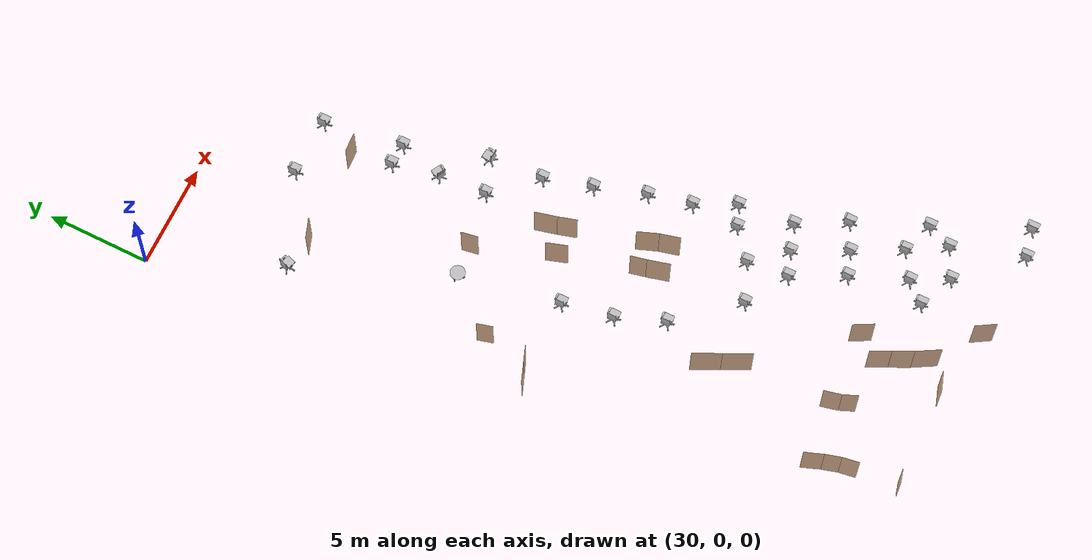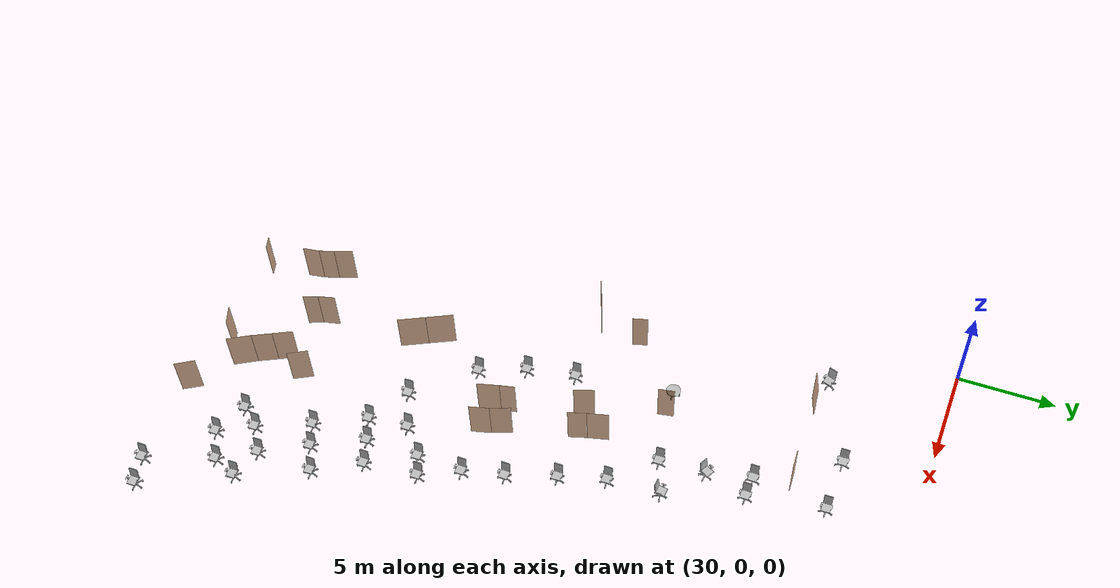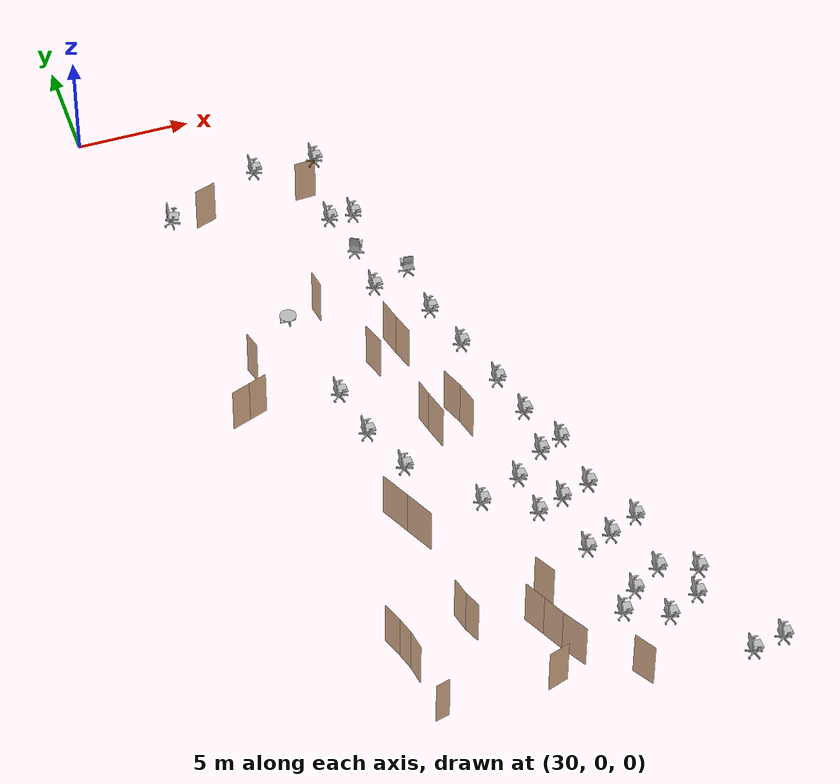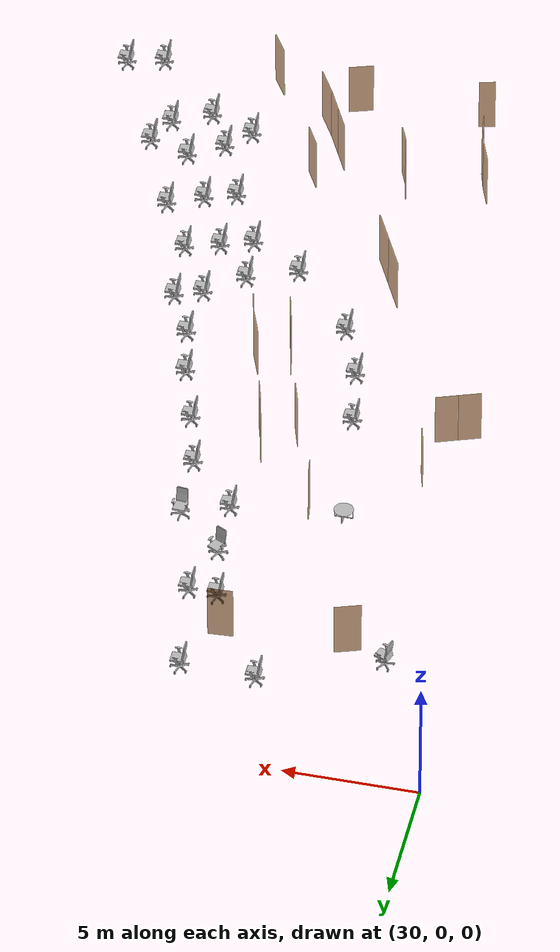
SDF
<sdf version="1.7">
 <world name="world">
  <include><uri>model://sun</uri></include>
  <include>
   <name>OpenRobotics/OfficeChairBlue_87</name>
   <uri>model://OfficeChairBlue</uri>
   <pose>49.55675901674036 -36.13892090346946 0.0 0 0 1.5708</pose>
   <static>True</static>
  </include>
  <include>
   <name>OpenRobotics/OfficeChairBlue_88</name>
   <uri>model://OfficeChairBlue</uri>
   <pose>48.15904496097328 -36.451538939352496 0.0 0 0 1.5708</pose>
   <static>True</static>
  </include>
  <include>
   <name>OpenRobotics/OfficeChairBlue_89</name>
   <uri>model://OfficeChairBlue</uri>
   <pose>43.909627604993254 -33.019836540409514 0.0 0 0 1.5708</pose>
   <static>True</static>
  </include>
  <include>
   <name>OpenRobotics/OfficeChairBlue_90</name>
   <uri>model://OfficeChairBlue</uri>
   <pose>44.74557532894025 -32.07744887990713 0.0 0 0 1.5708</pose>
   <static>True</static>
  </include>
  <include>
   <name>OpenRobotics/OfficeChairBlue_91</name>
   <uri>model://OfficeChairBlue</uri>
   <pose>46.02226323462398 -31.287132350983416 0.0 0 0 1.5833</pose>
   <static>True</static>
  </include>
  <include>
   <name>OpenRobotics/OfficeChairBlue_92</name>
   <uri>model://OfficeChairBlue</uri>
   <pose>47.587817301459395 -31.834312469275535 0.0 0 0 1.5708</pose>
   <static>True</static>
  </include>
  <include>
   <name>OpenRobotics/OfficeChairBlue_93</name>
   <uri>model://OfficeChairBlue</uri>
   <pose>47.0558147296761 -33.050191633427154 0.0 0 0 1.5708</pose>
   <static>True</static>
  </include>
  <include>
   <name>OpenRobotics/OfficeChairBlue_94</name>
   <uri>model://OfficeChairBlue</uri>
   <pose>45.627154247910525 -33.76462042980676 0.0 0 0 1.5708</pose>
   <static>True</static>
  </include>
  <include>
   <name>OpenRobotics/OfficeChairBlue_95</name>
   <uri>model://OfficeChairBlue</uri>
   <pose>43.66639263886485 -29.432810678493116 0.0 0 0 1.5708</pose>
   <static>True</static>
  </include>
  <include>
   <name>OpenRobotics/OfficeChairBlue_96</name>
   <uri>model://OfficeChairBlue</uri>
   <pose>44.83673916349 -29.02242558977403 0.0 0 0 1.5708</pose>
   <static>True</static>
  </include>
  <include>
   <name>OpenRobotics/OfficeChairBlue_97</name>
   <uri>model://OfficeChairBlue</uri>
   <pose>46.12870317117936 -28.414436729949816 0.0 0 0 1.5708</pose>
   <static>True</static>
  </include>
  <include>
   <name>OpenRobotics/OfficeChairBlue_98</name>
   <uri>model://OfficeChairBlue</uri>
   <pose>42.43523737270758 -26.9705001461786 0.0 0 0 1.5708</pose>
   <static>True</static>
  </include>
  <include>
   <name>OpenRobotics/OfficeChairBlue_99</name>
   <uri>model://OfficeChairBlue</uri>
   <pose>43.620761443841566 -26.54483895545388 0.0 0 0 1.5708</pose>
   <static>True</static>
  </include>
  <include>
   <name>OpenRobotics/OfficeChairBlue_100</name>
   <uri>model://OfficeChairBlue</uri>
   <pose>44.8975479050221 -26.134453866734795 0.0 0 0 1.5708</pose>
   <static>True</static>
  </include>
  <include>
   <name>OpenRobotics/OfficeChairBlue_101</name>
   <uri>model://OfficeChairBlue</uri>
   <pose>43.637023100815306 -23.82234191155954 0.0 0 0 1.5708</pose>
   <static>True</static>
  </include>
  <include>
   <name>OpenRobotics/OfficeChairBlue_102</name>
   <uri>model://OfficeChairBlue</uri>
   <pose>44.648103942594624 -23.423586371464097 0.0 0 0 1.5708</pose>
   <static>True</static>
  </include>
  <include>
   <name>OpenRobotics/OfficeChairBlue_103</name>
   <uri>model://OfficeChairBlue</uri>
   <pose>42.25566925751878 -24.961544899192564 0.0 0 0 1.5708</pose>
   <static>True</static>
  </include>
  <include>
   <name>OpenRobotics/OfficeChairBlue_104</name>
   <uri>model://OfficeChairBlue</uri>
   <pose>40.40440280542961 -25.716282893767676 0.0 0 0 1.5708</pose>
   <static>True</static>
  </include>
  <include>
   <name>OpenRobotics/OfficeChairBlue_137</name>
   <uri>model://OfficeChairBlue</uri>
   <pose>37.04651847359772 -4.176190621849798 0.0 0 0 1.5708</pose>
   <static>True</static>
  </include>
  <include>
   <name>OpenRobotics/OfficeChairBlue_138</name>
   <uri>model://OfficeChairBlue</uri>
   <pose>39.82568492815812 -4.256710462744009 0.0 0 0 1.5708</pose>
   <static>True</static>
  </include>
  <include>
   <name>OpenRobotics/OfficeChairBlue_139</name>
   <uri>model://OfficeChairBlue</uri>
   <pose>41.819462628635335 -14.668605923293448 0.0 0 0 1.5708</pose>
   <static>True</static>
  </include>
  <include>
   <name>OpenRobotics/OfficeChairBlue_140</name>
   <uri>model://OfficeChairBlue</uri>
   <pose>43.71251661137217 -21.495840853849945 0.0 0 0 1.5708</pose>
   <static>True</static>
  </include>
  <include>
   <name>OpenRobotics/OfficeChairBlue_141</name>
   <uri>model://OfficeChairBlue</uri>
   <pose>43.24940433185945 -19.42144475698171 0.0 0 0 1.5708</pose>
   <static>True</static>
  </include>
  <include>
   <name>OpenRobotics/OfficeChairBlue_142</name>
   <uri>model://OfficeChairBlue</uri>
   <pose>42.46391702227945 -16.984660098341124 0.0 0 0 1.5708</pose>
   <static>True</static>
  </include>
  <include>
   <name>OpenRobotics/OfficeChairBlue_143</name>
   <uri>model://OfficeChairBlue</uri>
   <pose>36.643722158133045 -18.172845167888987 0.0 0 0 1.5708</pose>
   <static>True</static>
  </include>
  <include>
   <name>OpenRobotics/OfficeChairBlue_144</name>
   <uri>model://OfficeChairBlue</uri>
   <pose>37.08672911629642 -20.629833703375734 0.0 0 0 1.5708</pose>
   <static>True</static>
  </include>
  <include>
   <name>OpenRobotics/OfficeChairBlue_145</name>
   <uri>model://OfficeChairBlue</uri>
   <pose>37.972940143616796 -22.92568400157725 0.0 0 0 1.5708</pose>
   <static>True</static>
  </include>
  <include>
   <name>OpenRobotics/OfficeChairBlue_146</name>
   <uri>model://OfficeChairBlue</uri>
   <pose>39.362474093148585 -8.042818428217691 0.0 0 0 1.5708</pose>
   <static>True</static>
  </include>
  <include>
   <name>OpenRobotics/OfficeChairBlue_147</name>
   <uri>model://OfficeChairBlue</uri>
   <pose>40.42983012360673 -8.103232947762551 0.0 0 0 1.5708</pose>
   <static>True</static>
  </include>
  <include>
   <name>OpenRobotics/OfficeChairBlue_148</name>
   <uri>model://OfficeChairBlue</uri>
   <pose>39.78537572996261 -10.177629044630786 0.0 0 0 2.6584</pose>
   <static>True</static>
  </include>
  <include>
   <name>OpenRobotics/OfficeChairBlue_149</name>
   <uri>model://OfficeChairBlue</uri>
   <pose>39.966717844094 -12.634617580117535 0.0 0 0 1.5708</pose>
   <static>True</static>
  </include>
  <include>
   <name>OpenRobotics/OfficeChairBlue_150</name>
   <uri>model://OfficeChairBlue</uri>
   <pose>41.537495352260386 -11.909544790082395 0.0 0 0 3.0485</pose>
   <static>True</static>
  </include>
  <include>
   <name>OpenRobotics/OfficeChairBlue_169</name>
   <uri>model://OfficeChairBlue</uri>
   <pose>32.72407149448108 -6.061360164841797 0.0 0 0 1.2406</pose>
   <static>True</static>
  </include>
  <include>
   <name>OpenRobotics/CoffeeTable_3</name>
   <uri>model://CoffeeTable</uri>
   <pose>35.741052362845316 -13.25325043359729 0.0 0 0 1.5708</pose>
   <static>True</static>
  </include>
  <model name="door_24">
   <pose>35.243839881436145 -35.68837444980008 0.0 0 0 0.26191786335358175</pose>
   <link name="right">
    <pose>0 0 1.11 0 0 0</pose>
    <visual name="right_visual">
     <geometry><box><size>0.6222113270615409 0.03 2.2</size></box></geometry>
     <material><ambient>0.5 0.25 0 0.6</ambient><diffuse>0.5 0.25 0 0.6</diffuse></material>
    </visual>
    <collision name="right_collision">
     <geometry><box><size>0.6222113270615409 0.03 2.2</size></box></geometry>
     <surface><contact><collide_bitmask>0x02</collide_bitmask></contact></surface>
    </collision>
    <inertial>
     <mass>50.0</mass>
     <inertia><ixx>20.17041666666667</ixx><iyy>21.779778898015355</iyy><izz>1.616862231348683</izz></inertia>
    </inertial>
   </link>
   <joint name="right_joint" type="revolute">
    <parent>world</parent>
    <child>right</child>
    <axis><xyz>0 0 -1</xyz><limit><lower>0</lower><upper>1.57</upper></limit></axis>
    <pose>0.31610566353077046 0 0 0 0 0</pose>
   </joint>
   <plugin name="door" filename="libdoor.so">
    <v_max_door>0.5</v_max_door>
    <a_max_door>0.3</a_max_door>
    <a_nom_door>0.15</a_nom_door>
    <dx_min_door>0.01</dx_min_door>
    <f_max_door>500.0</f_max_door>
    <door name="door_24" type="SwingDoor" left_joint_name="empty_joint" right_joint_name="right_joint"/>
   </plugin>
  </model>
  <model name="door_25">
   <pose>34.9086033590351 -33.35108156518973 0.0 0 0 -1.4198516233371654</pose>
   <link name="right">
    <pose>0 0 1.11 0 0 0</pose>
    <visual name="right_visual">
     <geometry><box><size>0.8295808804307718 0.03 2.2</size></box></geometry>
     <material><ambient>0.5 0.25 0 0.6</ambient><diffuse>0.5 0.25 0 0.6</diffuse></material>
    </visual>
    <collision name="right_collision">
     <geometry><box><size>0.8295808804307718 0.03 2.2</size></box></geometry>
     <surface><contact><collide_bitmask>0x02</collide_bitmask></contact></surface>
    </collision>
    <inertial>
     <mass>50.0</mass>
     <inertia><ixx>20.17041666666667</ixx><iyy>23.034185154901234</iyy><izz>2.871268488234561</izz></inertia>
    </inertial>
   </link>
   <joint name="right_joint" type="revolute">
    <parent>world</parent>
    <child>right</child>
    <axis><xyz>0 0 -1</xyz><limit><lower>0</lower><upper>1.57</upper></limit></axis>
    <pose>0.4197904402153859 0 0 0 0 0</pose>
   </joint>
   <plugin name="door" filename="libdoor.so">
    <v_max_door>0.5</v_max_door>
    <a_max_door>0.3</a_max_door>
    <a_nom_door>0.15</a_nom_door>
    <dx_min_door>0.01</dx_min_door>
    <f_max_door>500.0</f_max_door>
    <door name="door_25" type="SwingDoor" left_joint_name="empty_joint" right_joint_name="right_joint"/>
   </plugin>
  </model>
  <model name="door_26">
   <pose>34.73721535008157 -32.55716776063244 0.0 0 0 -1.2924794906765722</pose>
   <link name="right">
    <pose>0 0 1.11 0 0 0</pose>
    <visual name="right_visual">
     <geometry><box><size>0.7781207077813316 0.03 2.2</size></box></geometry>
     <material><ambient>0.5 0.25 0 0.6</ambient><diffuse>0.5 0.25 0 0.6</diffuse></material>
    </visual>
    <collision name="right_collision">
     <geometry><box><size>0.7781207077813316 0.03 2.2</size></box></geometry>
     <surface><contact><collide_bitmask>0x02</collide_bitmask></contact></surface>
    </collision>
    <inertial>
     <mass>50.0</mass>
     <inertia><ixx>20.17041666666667</ixx><iyy>22.689465982825507</iyy><izz>2.5265493161588353</izz></inertia>
    </inertial>
   </link>
   <joint name="right_joint" type="revolute">
    <parent>world</parent>
    <child>right</child>
    <axis><xyz>0 0 -1</xyz><limit><lower>0</lower><upper>1.57</upper></limit></axis>
    <pose>0.3940603538906658 0 0 0 0 0</pose>
   </joint>
   <plugin name="door" filename="libdoor.so">
    <v_max_door>0.5</v_max_door>
    <a_max_door>0.3</a_max_door>
    <a_nom_door>0.15</a_nom_door>
    <dx_min_door>0.01</dx_min_door>
    <f_max_door>500.0</f_max_door>
    <door name="door_26" type="SwingDoor" left_joint_name="empty_joint" right_joint_name="right_joint"/>
   </plugin>
  </model>
  <model name="door_27">
   <pose>34.465842789613745 -31.732307530076625 0.0 0 0 -1.2201634581755951</pose>
   <link name="right">
    <pose>0 0 1.11 0 0 0</pose>
    <visual name="right_visual">
     <geometry><box><size>0.9397119821307227 0.03 2.2</size></box></geometry>
     <material><ambient>0.5 0.25 0 0.6</ambient><diffuse>0.5 0.25 0 0.6</diffuse></material>
    </visual>
    <collision name="right_collision">
     <geometry><box><size>0.9397119821307227 0.03 2.2</size></box></geometry>
     <surface><contact><collide_bitmask>0x02</collide_bitmask></contact></surface>
    </collision>
    <inertial>
     <mass>50.0</mass>
     <inertia><ixx>20.17041666666667</ixx><iyy>23.84607753900022</iyy><izz>3.6831608723335494</izz></inertia>
    </inertial>
   </link>
   <joint name="right_joint" type="revolute">
    <parent>world</parent>
    <child>right</child>
    <axis><xyz>0 0 -1</xyz><limit><lower>0</lower><upper>1.57</upper></limit></axis>
    <pose>0.47485599106536136 0 0 0 0 0</pose>
   </joint>
   <plugin name="door" filename="libdoor.so">
    <v_max_door>0.5</v_max_door>
    <a_max_door>0.3</a_max_door>
    <a_nom_door>0.15</a_nom_door>
    <dx_min_door>0.01</dx_min_door>
    <f_max_door>500.0</f_max_door>
    <door name="door_27" type="SwingDoor" left_joint_name="empty_joint" right_joint_name="right_joint"/>
   </plugin>
  </model>
  <model name="door_28">
   <pose>37.67825920815328 -32.0790257678561 0.0 0 0 -1.1813873937368338</pose>
   <link name="right">
    <pose>0 0 1.11 0 0 0</pose>
    <visual name="right_visual">
     <geometry><box><size>0.7506320165575623 0.03 2.2</size></box></geometry>
     <material><ambient>0.5 0.25 0 0.6</ambient><diffuse>0.5 0.25 0 0.6</diffuse></material>
    </visual>
    <collision name="right_collision">
     <geometry><box><size>0.7506320165575623 0.03 2.2</size></box></geometry>
     <surface><contact><collide_bitmask>0x02</collide_bitmask></contact></surface>
    </collision>
    <inertial>
     <mass>50.0</mass>
     <inertia><ixx>20.17041666666667</ixx><iyy>22.514368434505307</iyy><izz>2.3514517678386357</izz></inertia>
    </inertial>
   </link>
   <joint name="right_joint" type="revolute">
    <parent>world</parent>
    <child>right</child>
    <axis><xyz>0 0 -1</xyz><limit><lower>0</lower><upper>1.57</upper></limit></axis>
    <pose>0.38031600827878115 0 0 0 0 0</pose>
   </joint>
   <plugin name="door" filename="libdoor.so">
    <v_max_door>0.5</v_max_door>
    <a_max_door>0.3</a_max_door>
    <a_nom_door>0.15</a_nom_door>
    <dx_min_door>0.01</dx_min_door>
    <f_max_door>500.0</f_max_door>
    <door name="door_28" type="SwingDoor" left_joint_name="empty_joint" right_joint_name="right_joint"/>
   </plugin>
  </model>
  <model name="door_29">
   <pose>37.437980906929184 -31.30556222888699 0.0 0 0 -1.347158078470863</pose>
   <link name="right">
    <pose>0 0 1.11 0 0 0</pose>
    <visual name="right_visual">
     <geometry><box><size>0.8547763397949348 0.03 2.2</size></box></geometry>
     <material><ambient>0.5 0.25 0 0.6</ambient><diffuse>0.5 0.25 0 0.6</diffuse></material>
    </visual>
    <collision name="right_collision">
     <geometry><box><size>0.8547763397949348 0.03 2.2</size></box></geometry>
     <surface><contact><collide_bitmask>0x02</collide_bitmask></contact></surface>
    </collision>
    <inertial>
     <mass>50.0</mass>
     <inertia><ixx>20.17041666666667</ixx><iyy>23.21101079613845</iyy><izz>3.048094129471775</izz></inertia>
    </inertial>
   </link>
   <joint name="right_joint" type="revolute">
    <parent>world</parent>
    <child>right</child>
    <axis><xyz>0 0 -1</xyz><limit><lower>0</lower><upper>1.57</upper></limit></axis>
    <pose>0.4323881698974674 0 0 0 0 0</pose>
   </joint>
   <plugin name="door" filename="libdoor.so">
    <v_max_door>0.5</v_max_door>
    <a_max_door>0.3</a_max_door>
    <a_nom_door>0.15</a_nom_door>
    <dx_min_door>0.01</dx_min_door>
    <f_max_door>500.0</f_max_door>
    <door name="door_29" type="SwingDoor" left_joint_name="empty_joint" right_joint_name="right_joint"/>
   </plugin>
  </model>
  <model name="door_30">
   <pose>40.10706087155221 -35.511812277264 0.0 0 0 0.33027510875429816</pose>
   <link name="right">
    <pose>0 0 1.11 0 0 0</pose>
    <visual name="right_visual">
     <geometry><box><size>0.947890174021494 0.03 2.2</size></box></geometry>
     <material><ambient>0.5 0.25 0 0.6</ambient><diffuse>0.5 0.25 0 0.6</diffuse></material>
    </visual>
    <collision name="right_collision">
     <geometry><box><size>0.947890174021494 0.03 2.2</size></box></geometry>
     <surface><contact><collide_bitmask>0x02</collide_bitmask></contact></surface>
    </collision>
    <inertial>
     <mass>50.0</mass>
     <inertia><ixx>20.17041666666667</ixx><iyy>23.910399091693748</iyy><izz>3.747482425027076</izz></inertia>
    </inertial>
   </link>
   <joint name="right_joint" type="revolute">
    <parent>world</parent>
    <child>right</child>
    <axis><xyz>0 0 -1</xyz><limit><lower>0</lower><upper>1.57</upper></limit></axis>
    <pose>0.478945087010747 0 0 0 0 0</pose>
   </joint>
   <plugin name="door" filename="libdoor.so">
    <v_max_door>0.5</v_max_door>
    <a_max_door>0.3</a_max_door>
    <a_nom_door>0.15</a_nom_door>
    <dx_min_door>0.01</dx_min_door>
    <f_max_door>500.0</f_max_door>
    <door name="door_30" type="SwingDoor" left_joint_name="empty_joint" right_joint_name="right_joint"/>
   </plugin>
  </model>
  <model name="door_31">
   <pose>41.17446617975876 -34.36807573677769 0.0 0 0 2.088319065844098</pose>
   <link name="right">
    <pose>0 0 1.11 0 0 0</pose>
    <visual name="right_visual">
     <geometry><box><size>1.2324799861211937 0.03 2.2</size></box></geometry>
     <material><ambient>0.5 0.25 0 0.6</ambient><diffuse>0.5 0.25 0 0.6</diffuse></material>
    </visual>
    <collision name="right_collision">
     <geometry><box><size>1.2324799861211937 0.03 2.2</size></box></geometry>
     <surface><contact><collide_bitmask>0x02</collide_bitmask></contact></surface>
    </collision>
    <inertial>
     <mass>50.0</mass>
     <inertia><ixx>20.17041666666667</ixx><iyy>26.495862150788746</iyy><izz>6.3329454841220745</izz></inertia>
    </inertial>
   </link>
   <joint name="right_joint" type="revolute">
    <parent>world</parent>
    <child>right</child>
    <axis><xyz>0 0 -1</xyz><limit><lower>0</lower><upper>1.57</upper></limit></axis>
    <pose>0.6212399930605969 0 0 0 0 0</pose>
   </joint>
   <plugin name="door" filename="libdoor.so">
    <v_max_door>0.5</v_max_door>
    <a_max_door>0.3</a_max_door>
    <a_nom_door>0.15</a_nom_door>
    <dx_min_door>0.01</dx_min_door>
    <f_max_door>500.0</f_max_door>
    <door name="door_31" type="SwingDoor" left_joint_name="empty_joint" right_joint_name="right_joint"/>
   </plugin>
  </model>
  <model name="double_hinged_7">
   <pose>40.41204085643243 -32.89752916886763 0.0 0 0 -1.1159982325560265</pose>
   <link name="right">
    <pose>0.51798287187456 0 1.11 0 0 0</pose>
    <visual name="right_visual">
     <geometry><box><size>1.02596574374912 0.03 2.2</size></box></geometry>
     <material><ambient>0.5 0.25 0 0.6</ambient><diffuse>0.5 0.25 0 0.6</diffuse></material>
    </visual>
    <collision name="right_collision">
     <geometry><box><size>1.02596574374912 0.03 2.2</size></box></geometry>
     <surface><contact><collide_bitmask>0x02</collide_bitmask></contact></surface>
    </collision>
    <inertial>
     <mass>50.0</mass>
     <inertia><ixx>20.17041666666667</ixx><iyy>24.552523780611192</iyy><izz>4.389607113944522</izz></inertia>
    </inertial>
   </link>
   <joint name="right_joint" type="revolute">
    <parent>world</parent>
    <child>right</child>
    <axis><xyz>0 0 -1</xyz><limit><lower>0</lower><upper>1.57</upper></limit></axis>
    <pose>0.51798287187456 0 0 0 0 0</pose>
   </joint>
   <link name="left">
    <pose>-0.51798287187456 0 1.11 0 0 0</pose>
    <visual name="left_visual">
     <geometry><box><size>1.02596574374912 0.03 2.2</size></box></geometry>
     <material><ambient>0.5 0.25 0 0.6</ambient><diffuse>0.5 0.25 0 0.6</diffuse></material>
    </visual>
    <collision name="left_collision">
     <geometry><box><size>1.02596574374912 0.03 2.2</size></box></geometry>
     <surface><contact><collide_bitmask>0x02</collide_bitmask></contact></surface>
    </collision>
    <inertial>
     <mass>50.0</mass>
     <inertia><ixx>20.17041666666667</ixx><iyy>24.552523780611192</iyy><izz>4.389607113944522</izz></inertia>
    </inertial>
   </link>
   <joint name="left_joint" type="revolute">
    <parent>world</parent>
    <child>left</child>
    <axis><xyz>0 0 -1</xyz><limit><lower>-1.57</lower><upper>0</upper></limit></axis>
    <pose>-0.51798287187456 0 0 0 0 0</pose>
   </joint>
   <plugin name="door" filename="libdoor.so">
    <v_max_door>0.5</v_max_door>
    <a_max_door>0.3</a_max_door>
    <a_nom_door>0.15</a_nom_door>
    <dx_min_door>0.01</dx_min_door>
    <f_max_door>500.0</f_max_door>
    <door name="double_hinged_7" type="DoubleSwingDoor" left_joint_name="left_joint" right_joint_name="right_joint"/>
   </plugin>
  </model>
  <model name="door_32">
   <pose>41.01993116075984 -31.2168622817575 0.0 0 0 -1.077640102518937</pose>
   <link name="right">
    <pose>0 0 1.11 0 0 0</pose>
    <visual name="right_visual">
     <geometry><box><size>1.0357023609931504 0.03 2.2</size></box></geometry>
     <material><ambient>0.5 0.25 0 0.6</ambient><diffuse>0.5 0.25 0 0.6</diffuse></material>
    </visual>
    <collision name="right_collision">
     <geometry><box><size>1.0357023609931504 0.03 2.2</size></box></geometry>
     <surface><contact><collide_bitmask>0x02</collide_bitmask></contact></surface>
    </collision>
    <inertial>
     <mass>50.0</mass>
     <inertia><ixx>20.17041666666667</ixx><iyy>24.636164085694947</iyy><izz>4.473247419028275</izz></inertia>
    </inertial>
   </link>
   <joint name="right_joint" type="revolute">
    <parent>world</parent>
    <child>right</child>
    <axis><xyz>0 0 -1</xyz><limit><lower>0</lower><upper>1.57</upper></limit></axis>
    <pose>0.5228511804965752 0 0 0 0 0</pose>
   </joint>
   <plugin name="door" filename="libdoor.so">
    <v_max_door>0.5</v_max_door>
    <a_max_door>0.3</a_max_door>
    <a_nom_door>0.15</a_nom_door>
    <dx_min_door>0.01</dx_min_door>
    <f_max_door>500.0</f_max_door>
    <door name="door_32" type="SwingDoor" left_joint_name="empty_joint" right_joint_name="right_joint"/>
   </plugin>
  </model>
  <model name="double_hinged_8">
   <pose>36.93391881849168 -26.071131960034023 0.0 0 0 -1.1180576023135522</pose>
   <link name="right">
    <pose>0.7080797027719732 0 1.11 0 0 0</pose>
    <visual name="right_visual">
     <geometry><box><size>1.4061594055439464 0.03 2.2</size></box></geometry>
     <material><ambient>0.5 0.25 0 0.6</ambient><diffuse>0.5 0.25 0 0.6</diffuse></material>
    </visual>
    <collision name="right_collision">
     <geometry><box><size>1.4061594055439464 0.03 2.2</size></box></geometry>
     <surface><contact><collide_bitmask>0x02</collide_bitmask></contact></surface>
    </collision>
    <inertial>
     <mass>50.0</mass>
     <inertia><ixx>20.17041666666667</ixx><iyy>28.405351140832106</iyy><izz>8.242434474165435</izz></inertia>
    </inertial>
   </link>
   <joint name="right_joint" type="revolute">
    <parent>world</parent>
    <child>right</child>
    <axis><xyz>0 0 -1</xyz><limit><lower>0</lower><upper>1.57</upper></limit></axis>
    <pose>0.7080797027719732 0 0 0 0 0</pose>
   </joint>
   <link name="left">
    <pose>-0.7080797027719732 0 1.11 0 0 0</pose>
    <visual name="left_visual">
     <geometry><box><size>1.4061594055439464 0.03 2.2</size></box></geometry>
     <material><ambient>0.5 0.25 0 0.6</ambient><diffuse>0.5 0.25 0 0.6</diffuse></material>
    </visual>
    <collision name="left_collision">
     <geometry><box><size>1.4061594055439464 0.03 2.2</size></box></geometry>
     <surface><contact><collide_bitmask>0x02</collide_bitmask></contact></surface>
    </collision>
    <inertial>
     <mass>50.0</mass>
     <inertia><ixx>20.17041666666667</ixx><iyy>28.405351140832106</iyy><izz>8.242434474165435</izz></inertia>
    </inertial>
   </link>
   <joint name="left_joint" type="revolute">
    <parent>world</parent>
    <child>left</child>
    <axis><xyz>0 0 -1</xyz><limit><lower>-1.57</lower><upper>0</upper></limit></axis>
    <pose>-0.7080797027719732 0 0 0 0 0</pose>
   </joint>
   <plugin name="door" filename="libdoor.so">
    <v_max_door>0.5</v_max_door>
    <a_max_door>0.3</a_max_door>
    <a_nom_door>0.15</a_nom_door>
    <dx_min_door>0.01</dx_min_door>
    <f_max_door>500.0</f_max_door>
    <door name="double_hinged_8" type="DoubleSwingDoor" left_joint_name="left_joint" right_joint_name="right_joint"/>
   </plugin>
  </model>
  <model name="door_33">
   <pose>43.43345672215313 -36.19593525837436 0.0 0 0 -1.0276265584311552</pose>
   <link name="right">
    <pose>0 0 1.11 0 0 0</pose>
    <visual name="right_visual">
     <geometry><box><size>1.0347583033305887 0.03 2.2</size></box></geometry>
     <material><ambient>0.5 0.25 0 0.6</ambient><diffuse>0.5 0.25 0 0.6</diffuse></material>
    </visual>
    <collision name="right_collision">
     <geometry><box><size>1.0347583033305887 0.03 2.2</size></box></geometry>
     <surface><contact><collide_bitmask>0x02</collide_bitmask></contact></surface>
    </collision>
    <inertial>
     <mass>50.0</mass>
     <inertia><ixx>20.17041666666667</ixx><iyy>24.62801977629833</iyy><izz>4.465103109631661</izz></inertia>
    </inertial>
   </link>
   <joint name="right_joint" type="revolute">
    <parent>world</parent>
    <child>right</child>
    <axis><xyz>0 0 -1</xyz><limit><lower>0</lower><upper>1.57</upper></limit></axis>
    <pose>0.5223791516652944 0 0 0 0 0</pose>
   </joint>
   <plugin name="door" filename="libdoor.so">
    <v_max_door>0.5</v_max_door>
    <a_max_door>0.3</a_max_door>
    <a_nom_door>0.15</a_nom_door>
    <dx_min_door>0.01</dx_min_door>
    <f_max_door>500.0</f_max_door>
    <door name="door_33" type="SwingDoor" left_joint_name="empty_joint" right_joint_name="right_joint"/>
   </plugin>
  </model>
  <model name="door_37">
   <pose>41.02880115547278 -21.512546010559333 0.0 0 0 -1.3257939709156485</pose>
   <link name="right">
    <pose>0 0 1.11 0 0 0</pose>
    <visual name="right_visual">
     <geometry><box><size>0.9988831654480883 0.03 2.2</size></box></geometry>
     <material><ambient>0.5 0.25 0 0.6</ambient><diffuse>0.5 0.25 0 0.6</diffuse></material>
    </visual>
    <collision name="right_collision">
     <geometry><box><size>0.9988831654480883 0.03 2.2</size></box></geometry>
     <surface><contact><collide_bitmask>0x02</collide_bitmask></contact></surface>
    </collision>
    <inertial>
     <mass>50.0</mass>
     <inertia><ixx>20.17041666666667</ixx><iyy>24.32403157589831</iyy><izz>4.161114909231637</izz></inertia>
    </inertial>
   </link>
   <joint name="right_joint" type="revolute">
    <parent>world</parent>
    <child>right</child>
    <axis><xyz>0 0 -1</xyz><limit><lower>0</lower><upper>1.57</upper></limit></axis>
    <pose>0.5044415827240442 0 0 0 0 0</pose>
   </joint>
   <plugin name="door" filename="libdoor.so">
    <v_max_door>0.5</v_max_door>
    <a_max_door>0.3</a_max_door>
    <a_nom_door>0.15</a_nom_door>
    <dx_min_door>0.01</dx_min_door>
    <f_max_door>500.0</f_max_door>
    <door name="door_37" type="SwingDoor" left_joint_name="empty_joint" right_joint_name="right_joint"/>
   </plugin>
  </model>
  <model name="door_38">
   <pose>40.71913978449407 -20.525118488014535 0.0 0 0 -1.2110826593727029</pose>
   <link name="right">
    <pose>0 0 1.11 0 0 0</pose>
    <visual name="right_visual">
     <geometry><box><size>1.0542125043555295 0.03 2.2</size></box></geometry>
     <material><ambient>0.5 0.25 0 0.6</ambient><diffuse>0.5 0.25 0 0.6</diffuse></material>
    </visual>
    <collision name="right_collision">
     <geometry><box><size>1.0542125043555295 0.03 2.2</size></box></geometry>
     <surface><contact><collide_bitmask>0x02</collide_bitmask></contact></surface>
    </collision>
    <inertial>
     <mass>50.0</mass>
     <inertia><ixx>20.17041666666667</ixx><iyy>24.79735001808149</iyy><izz>4.634433351414821</izz></inertia>
    </inertial>
   </link>
   <joint name="right_joint" type="revolute">
    <parent>world</parent>
    <child>right</child>
    <axis><xyz>0 0 -1</xyz><limit><lower>0</lower><upper>1.57</upper></limit></axis>
    <pose>0.5321062521777647 0 0 0 0 0</pose>
   </joint>
   <plugin name="door" filename="libdoor.so">
    <v_max_door>0.5</v_max_door>
    <a_max_door>0.3</a_max_door>
    <a_nom_door>0.15</a_nom_door>
    <dx_min_door>0.01</dx_min_door>
    <f_max_door>500.0</f_max_door>
    <door name="door_38" type="SwingDoor" left_joint_name="empty_joint" right_joint_name="right_joint"/>
   </plugin>
  </model>
  <model name="door_39">
   <pose>39.7235814334624 -16.9189728597169 0.0 0 0 -1.2866473559974854</pose>
   <link name="right">
    <pose>0 0 1.11 0 0 0</pose>
    <visual name="right_visual">
     <geometry><box><size>0.9342799854961952 0.03 2.2</size></box></geometry>
     <material><ambient>0.5 0.25 0 0.6</ambient><diffuse>0.5 0.25 0 0.6</diffuse></material>
    </visual>
    <collision name="right_collision">
     <geometry><box><size>0.9342799854961952 0.03 2.2</size></box></geometry>
     <surface><contact><collide_bitmask>0x02</collide_bitmask></contact></surface>
    </collision>
    <inertial>
     <mass>50.0</mass>
     <inertia><ixx>20.17041666666667</ixx><iyy>23.803662880411547</iyy><izz>3.640746213744878</izz></inertia>
    </inertial>
   </link>
   <joint name="right_joint" type="revolute">
    <parent>world</parent>
    <child>right</child>
    <axis><xyz>0 0 -1</xyz><limit><lower>0</lower><upper>1.57</upper></limit></axis>
    <pose>0.4721399927480976 0 0 0 0 0</pose>
   </joint>
   <plugin name="door" filename="libdoor.so">
    <v_max_door>0.5</v_max_door>
    <a_max_door>0.3</a_max_door>
    <a_nom_door>0.15</a_nom_door>
    <dx_min_door>0.01</dx_min_door>
    <f_max_door>500.0</f_max_door>
    <door name="door_39" type="SwingDoor" left_joint_name="empty_joint" right_joint_name="right_joint"/>
   </plugin>
  </model>
  <model name="door_40">
   <pose>39.4636413106246 -15.935684668038146 0.0 0 0 -1.334608019708004</pose>
   <link name="right">
    <pose>0 0 1.11 0 0 0</pose>
    <visual name="right_visual">
     <geometry><box><size>1.08043527091345 0.03 2.2</size></box></geometry>
     <material><ambient>0.5 0.25 0 0.6</ambient><diffuse>0.5 0.25 0 0.6</diffuse></material>
    </visual>
    <collision name="right_collision">
     <geometry><box><size>1.08043527091345 0.03 2.2</size></box></geometry>
     <surface><contact><collide_bitmask>0x02</collide_bitmask></contact></surface>
    </collision>
    <inertial>
     <mass>50.0</mass>
     <inertia><ixx>20.17041666666667</ixx><iyy>25.03058489430759</iyy><izz>4.867668227640917</izz></inertia>
    </inertial>
   </link>
   <joint name="right_joint" type="revolute">
    <parent>world</parent>
    <child>right</child>
    <axis><xyz>0 0 -1</xyz><limit><lower>0</lower><upper>1.57</upper></limit></axis>
    <pose>0.545217635456725 0 0 0 0 0</pose>
   </joint>
   <plugin name="door" filename="libdoor.so">
    <v_max_door>0.5</v_max_door>
    <a_max_door>0.3</a_max_door>
    <a_nom_door>0.15</a_nom_door>
    <dx_min_door>0.01</dx_min_door>
    <f_max_door>500.0</f_max_door>
    <door name="door_40" type="SwingDoor" left_joint_name="empty_joint" right_joint_name="right_joint"/>
   </plugin>
  </model>
  <model name="door_41">
   <pose>38.37667273630117 -17.043399174440204 0.0 0 0 1.8804886161120302</pose>
   <link name="right">
    <pose>0 0 1.11 0 0 0</pose>
    <visual name="right_visual">
     <geometry><box><size>1.0471335527786454 0.03 2.2</size></box></geometry>
     <material><ambient>0.5 0.25 0 0.6</ambient><diffuse>0.5 0.25 0 0.6</diffuse></material>
    </visual>
    <collision name="right_collision">
     <geometry><box><size>1.0471335527786454 0.03 2.2</size></box></geometry>
     <surface><contact><collide_bitmask>0x02</collide_bitmask></contact></surface>
    </collision>
    <inertial>
     <mass>50.0</mass>
     <inertia><ixx>20.17041666666667</ixx><iyy>24.735369488978456</iyy><izz>4.572452822311784</izz></inertia>
    </inertial>
   </link>
   <joint name="right_joint" type="revolute">
    <parent>world</parent>
    <child>right</child>
    <axis><xyz>0 0 -1</xyz><limit><lower>0</lower><upper>1.57</upper></limit></axis>
    <pose>0.5285667763893227 0 0 0 0 0</pose>
   </joint>
   <plugin name="door" filename="libdoor.so">
    <v_max_door>0.5</v_max_door>
    <a_max_door>0.3</a_max_door>
    <a_nom_door>0.15</a_nom_door>
    <dx_min_door>0.01</dx_min_door>
    <f_max_door>500.0</f_max_door>
    <door name="door_41" type="SwingDoor" left_joint_name="empty_joint" right_joint_name="right_joint"/>
   </plugin>
  </model>
  <model name="door_42">
   <pose>39.423726334416344 -20.667728291899387 0.0 0 0 1.7783769485375243</pose>
   <link name="right">
    <pose>0 0 1.11 0 0 0</pose>
    <visual name="right_visual">
     <geometry><box><size>0.7718712241983159 0.03 2.2</size></box></geometry>
     <material><ambient>0.5 0.25 0 0.6</ambient><diffuse>0.5 0.25 0 0.6</diffuse></material>
    </visual>
    <collision name="right_collision">
     <geometry><box><size>0.7718712241983159 0.03 2.2</size></box></geometry>
     <surface><contact><collide_bitmask>0x02</collide_bitmask></contact></surface>
    </collision>
    <inertial>
     <mass>50.0</mass>
     <inertia><ixx>20.17041666666667</ixx><iyy>22.649104944772535</iyy><izz>2.4861882781058617</izz></inertia>
    </inertial>
   </link>
   <joint name="right_joint" type="revolute">
    <parent>world</parent>
    <child>right</child>
    <axis><xyz>0 0 -1</xyz><limit><lower>0</lower><upper>1.57</upper></limit></axis>
    <pose>0.39093561209915795 0 0 0 0 0</pose>
   </joint>
   <plugin name="door" filename="libdoor.so">
    <v_max_door>0.5</v_max_door>
    <a_max_door>0.3</a_max_door>
    <a_nom_door>0.15</a_nom_door>
    <dx_min_door>0.01</dx_min_door>
    <f_max_door>500.0</f_max_door>
    <door name="door_42" type="SwingDoor" left_joint_name="empty_joint" right_joint_name="right_joint"/>
   </plugin>
  </model>
  <model name="door_43">
   <pose>39.64522981349803 -21.593952850924836 0.0 0 0 1.8244358220546857</pose>
   <link name="right">
    <pose>0 0 1.11 0 0 0</pose>
    <visual name="right_visual">
     <geometry><box><size>1.1133021973672368 0.03 2.2</size></box></geometry>
     <material><ambient>0.5 0.25 0 0.6</ambient><diffuse>0.5 0.25 0 0.6</diffuse></material>
    </visual>
    <collision name="right_collision">
     <geometry><box><size>1.1133021973672368 0.03 2.2</size></box></geometry>
     <surface><contact><collide_bitmask>0x02</collide_bitmask></contact></surface>
    </collision>
    <inertial>
     <mass>50.0</mass>
     <inertia><ixx>20.17041666666667</ixx><iyy>25.331007427761328</iyy><izz>5.168090761094657</izz></inertia>
    </inertial>
   </link>
   <joint name="right_joint" type="revolute">
    <parent>world</parent>
    <child>right</child>
    <axis><xyz>0 0 -1</xyz><limit><lower>0</lower><upper>1.57</upper></limit></axis>
    <pose>0.5616510986836184 0 0 0 0 0</pose>
   </joint>
   <plugin name="door" filename="libdoor.so">
    <v_max_door>0.5</v_max_door>
    <a_max_door>0.3</a_max_door>
    <a_nom_door>0.15</a_nom_door>
    <dx_min_door>0.01</dx_min_door>
    <f_max_door>500.0</f_max_door>
    <door name="door_43" type="SwingDoor" left_joint_name="empty_joint" right_joint_name="right_joint"/>
   </plugin>
  </model>
  <model name="door_44">
   <pose>37.03276998179265 -13.242655717690159 0.0 0 0 1.7303900510423336</pose>
   <link name="right">
    <pose>0 0 1.11 0 0 0</pose>
    <visual name="right_visual">
     <geometry><box><size>0.8154452195648025 0.03 2.2</size></box></geometry>
     <material><ambient>0.5 0.25 0 0.6</ambient><diffuse>0.5 0.25 0 0.6</diffuse></material>
    </visual>
    <collision name="right_collision">
     <geometry><box><size>0.8154452195648025 0.03 2.2</size></box></geometry>
     <surface><contact><collide_bitmask>0x02</collide_bitmask></contact></surface>
    </collision>
    <inertial>
     <mass>50.0</mass>
     <inertia><ixx>20.17041666666667</ixx><iyy>22.93729544212954</iyy><izz>2.774378775462871</izz></inertia>
    </inertial>
   </link>
   <joint name="right_joint" type="revolute">
    <parent>world</parent>
    <child>right</child>
    <axis><xyz>0 0 -1</xyz><limit><lower>0</lower><upper>1.57</upper></limit></axis>
    <pose>0.4127226097824013 0 0 0 0 0</pose>
   </joint>
   <plugin name="door" filename="libdoor.so">
    <v_max_door>0.5</v_max_door>
    <a_max_door>0.3</a_max_door>
    <a_nom_door>0.15</a_nom_door>
    <dx_min_door>0.01</dx_min_door>
    <f_max_door>500.0</f_max_door>
    <door name="door_44" type="SwingDoor" left_joint_name="empty_joint" right_joint_name="right_joint"/>
   </plugin>
  </model>
  <model name="door_45">
   <pose>38.68283538714311 -6.246595221097205 0.0 0 0 0.05870055475829858</pose>
   <link name="right">
    <pose>0 0 1.11 0 0 0</pose>
    <visual name="right_visual">
     <geometry><box><size>0.9324340047708379 0.03 2.2</size></box></geometry>
     <material><ambient>0.5 0.25 0 0.6</ambient><diffuse>0.5 0.25 0 0.6</diffuse></material>
    </visual>
    <collision name="right_collision">
     <geometry><box><size>0.9324340047708379 0.03 2.2</size></box></geometry>
     <surface><contact><collide_bitmask>0x02</collide_bitmask></contact></surface>
    </collision>
    <inertial>
     <mass>50.0</mass>
     <inertia><ixx>20.17041666666667</ixx><iyy>23.789304888554103</iyy><izz>3.6263882218874293</izz></inertia>
    </inertial>
   </link>
   <joint name="right_joint" type="revolute">
    <parent>world</parent>
    <child>right</child>
    <axis><xyz>0 0 -1</xyz><limit><lower>0</lower><upper>1.57</upper></limit></axis>
    <pose>0.47121700238541897 0 0 0 0 0</pose>
   </joint>
   <plugin name="door" filename="libdoor.so">
    <v_max_door>0.5</v_max_door>
    <a_max_door>0.3</a_max_door>
    <a_nom_door>0.15</a_nom_door>
    <dx_min_door>0.01</dx_min_door>
    <f_max_door>500.0</f_max_door>
    <door name="door_45" type="SwingDoor" left_joint_name="empty_joint" right_joint_name="right_joint"/>
   </plugin>
  </model>
  <model name="door_46">
   <pose>34.06166669719373 -6.440256772329915 0.0 0 0 0.3392761757375816</pose>
   <link name="right">
    <pose>0 0 1.11 0 0 0</pose>
    <visual name="right_visual">
     <geometry><box><size>0.9876828825462691 0.03 2.2</size></box></geometry>
     <material><ambient>0.5 0.25 0 0.6</ambient><diffuse>0.5 0.25 0 0.6</diffuse></material>
    </visual>
    <collision name="right_collision">
     <geometry><box><size>0.9876828825462691 0.03 2.2</size></box></geometry>
     <surface><contact><collide_bitmask>0x02</collide_bitmask></contact></surface>
    </collision>
    <inertial>
     <mass>50.0</mass>
     <inertia><ixx>20.17041666666667</ixx><iyy>24.231322818645452</iyy><izz>4.068406151978781</izz></inertia>
    </inertial>
   </link>
   <joint name="right_joint" type="revolute">
    <parent>world</parent>
    <child>right</child>
    <axis><xyz>0 0 -1</xyz><limit><lower>0</lower><upper>1.57</upper></limit></axis>
    <pose>0.49884144127313457 0 0 0 0 0</pose>
   </joint>
   <plugin name="door" filename="libdoor.so">
    <v_max_door>0.5</v_max_door>
    <a_max_door>0.3</a_max_door>
    <a_nom_door>0.15</a_nom_door>
    <dx_min_door>0.01</dx_min_door>
    <f_max_door>500.0</f_max_door>
    <door name="door_46" type="SwingDoor" left_joint_name="empty_joint" right_joint_name="right_joint"/>
   </plugin>
  </model>
  <model name="double_hinged_14">
   <pose>32.57771658171743 -18.21123253389669 0.0 0 0 0.3587706702705703</pose>
   <link name="right">
    <pose>0.4300813961745515 0 1.11 0 0 0</pose>
    <visual name="right_visual">
     <geometry><box><size>0.850162792349103 0.03 2.2</size></box></geometry>
     <material><ambient>0.5 0.25 0 0.6</ambient><diffuse>0.5 0.25 0 0.6</diffuse></material>
    </visual>
    <collision name="right_collision">
     <geometry><box><size>0.850162792349103 0.03 2.2</size></box></geometry>
     <surface><contact><collide_bitmask>0x02</collide_bitmask></contact></surface>
    </collision>
    <inertial>
     <mass>50.0</mass>
     <inertia><ixx>20.17041666666667</ixx><iyy>23.178236556228438</iyy><izz>3.0153198895617668</izz></inertia>
    </inertial>
   </link>
   <joint name="right_joint" type="revolute">
    <parent>world</parent>
    <child>right</child>
    <axis><xyz>0 0 -1</xyz><limit><lower>0</lower><upper>1.57</upper></limit></axis>
    <pose>0.4300813961745515 0 0 0 0 0</pose>
   </joint>
   <link name="left">
    <pose>-0.4300813961745515 0 1.11 0 0 0</pose>
    <visual name="left_visual">
     <geometry><box><size>0.850162792349103 0.03 2.2</size></box></geometry>
     <material><ambient>0.5 0.25 0 0.6</ambient><diffuse>0.5 0.25 0 0.6</diffuse></material>
    </visual>
    <collision name="left_collision">
     <geometry><box><size>0.850162792349103 0.03 2.2</size></box></geometry>
     <surface><contact><collide_bitmask>0x02</collide_bitmask></contact></surface>
    </collision>
    <inertial>
     <mass>50.0</mass>
     <inertia><ixx>20.17041666666667</ixx><iyy>23.178236556228438</iyy><izz>3.0153198895617668</izz></inertia>
    </inertial>
   </link>
   <joint name="left_joint" type="revolute">
    <parent>world</parent>
    <child>left</child>
    <axis><xyz>0 0 -1</xyz><limit><lower>-1.57</lower><upper>0</upper></limit></axis>
    <pose>-0.4300813961745515 0 0 0 0 0</pose>
   </joint>
   <plugin name="door" filename="libdoor.so">
    <v_max_door>0.5</v_max_door>
    <a_max_door>0.3</a_max_door>
    <a_nom_door>0.15</a_nom_door>
    <dx_min_door>0.01</dx_min_door>
    <f_max_door>500.0</f_max_door>
    <door name="double_hinged_14" type="DoubleSwingDoor" left_joint_name="left_joint" right_joint_name="right_joint"/>
   </plugin>
  </model>
  <model name="door_62">
   <pose>33.40420297797061 -15.83323622910359 0.0 0 0 1.8317372152813545</pose>
   <link name="right">
    <pose>0 0 1.11 0 0 0</pose>
    <visual name="right_visual">
     <geometry><box><size>0.7777114161037585 0.03 2.2</size></box></geometry>
     <material><ambient>0.5 0.25 0 0.6</ambient><diffuse>0.5 0.25 0 0.6</diffuse></material>
    </visual>
    <collision name="right_collision">
     <geometry><box><size>0.7777114161037585 0.03 2.2</size></box></geometry>
     <surface><contact><collide_bitmask>0x02</collide_bitmask></contact></surface>
    </collision>
    <inertial>
     <mass>50.0</mass>
     <inertia><ixx>20.17041666666667</ixx><iyy>22.686812694742144</iyy><izz>2.5238960280754728</izz></inertia>
    </inertial>
   </link>
   <joint name="right_joint" type="revolute">
    <parent>world</parent>
    <child>right</child>
    <axis><xyz>0 0 -1</xyz><limit><lower>0</lower><upper>1.57</upper></limit></axis>
    <pose>0.39385570805187925 0 0 0 0 0</pose>
   </joint>
   <plugin name="door" filename="libdoor.so">
    <v_max_door>0.5</v_max_door>
    <a_max_door>0.3</a_max_door>
    <a_nom_door>0.15</a_nom_door>
    <dx_min_door>0.01</dx_min_door>
    <f_max_door>500.0</f_max_door>
    <door name="door_62" type="SwingDoor" left_joint_name="empty_joint" right_joint_name="right_joint"/>
   </plugin>
  </model>
 </world>
</sdf>
